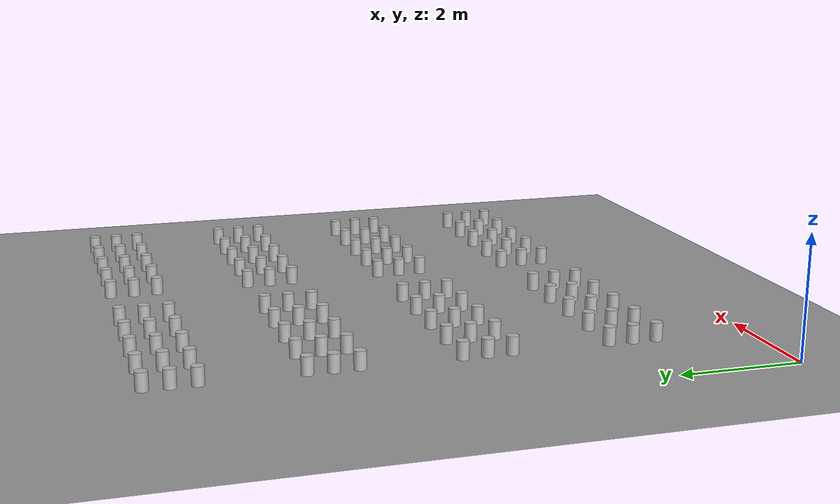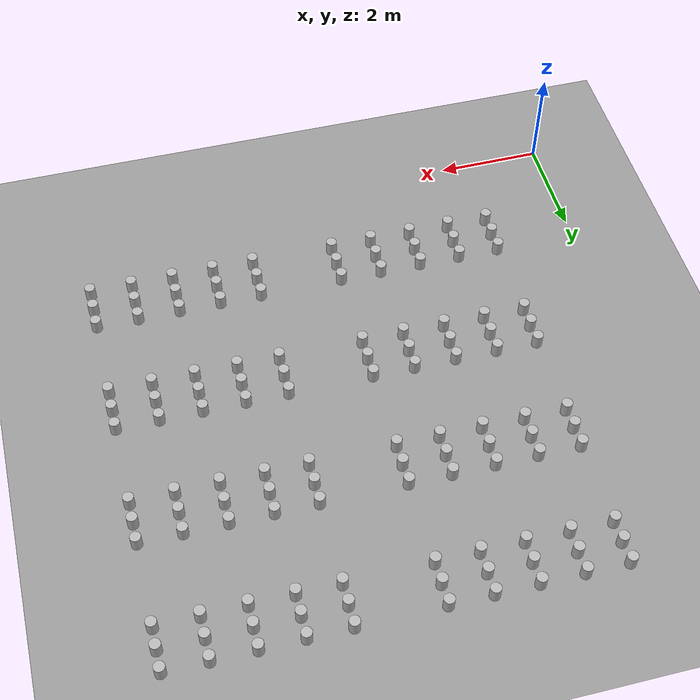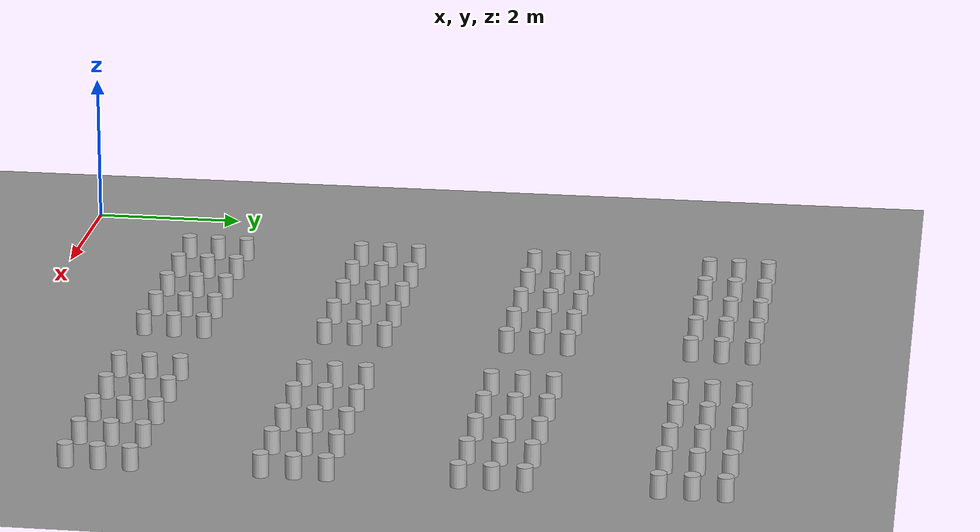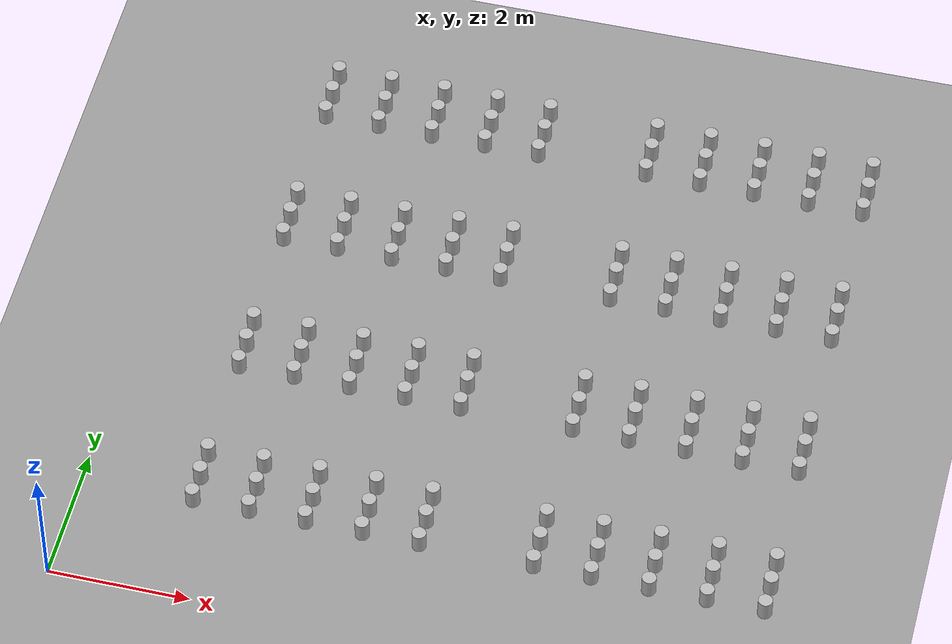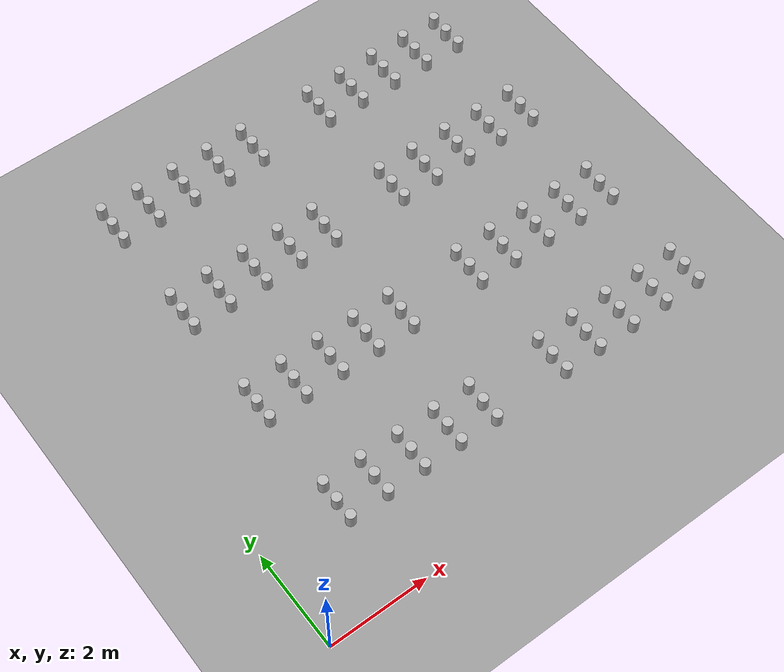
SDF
<?xml version="1.0" ?>
<sdf version="1.6">
  <world name="world_map_02">

    <scene>
    	<shadows>0</shadows>
  	</scene>

    <!-- A global light source -->
    <include>
      <uri>model://sun_model</uri>
    </include>

    <!-- A ground plane -->
    <include>
      <uri>model://ground_plane_model</uri>
    </include>

    <!-- Obstacles -->
    <model name="obstacles">
      <include>
        <uri>model://map_02</uri>
      </include>
      <pose frame="">0 0 0 1.57 0 0</pose>
    </model>

    <gravity>0 0 -9.8</gravity>

  </world>
</sdf>

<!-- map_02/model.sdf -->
<sdf version="1.6">
  <model name="map_02">
    <link name="link">

      <collision name="collision">
        <geometry>
          <mesh>
            <uri>model://map_02/meshes/map_02.DAE</uri>
            <scale>0.1 0.1 0.1</scale>
          </mesh>
        </geometry>
      </collision>
      <visual name="visual">
	    <geometry>
          <mesh>
            <uri>model://map_02/meshes/map_02.DAE</uri>
            <scale>0.1 0.1 0.1</scale>
          </mesh>
        </geometry>
      </visual>
    </link>
    <static>1</static>
  </model>
</sdf>

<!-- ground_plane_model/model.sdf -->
<sdf version="1.5">
  <model name="ground_plane_model">
    <static>true</static>
    <link name="link">
      <collision name="collision">
        <geometry>
          <plane>
            <normal>0 0 1</normal>
            <size>100 100</size>
          </plane>
        </geometry>
        <surface>
          <contact>
             <collide_bitmask>0xffff</collide_bitmask>
          </contact>
          <friction>
            <ode>
              <mu>100</mu>
              <mu2>50</mu2>
            </ode>
          </friction>
        </surface>
      </collision>
      <visual name="visual">
        <cast_shadows>false</cast_shadows>
        <geometry>
          <plane>
            <normal>0 0 1</normal>
            <size>100 100</size>
          </plane>
        </geometry>
        <material>
          <script>
            <uri>file://media/materials/scripts/gazebo.material</uri>
            <name>Gazebo/Grey</name>
          </script>
        </material>
      </visual>
    </link>
  </model>
</sdf>
